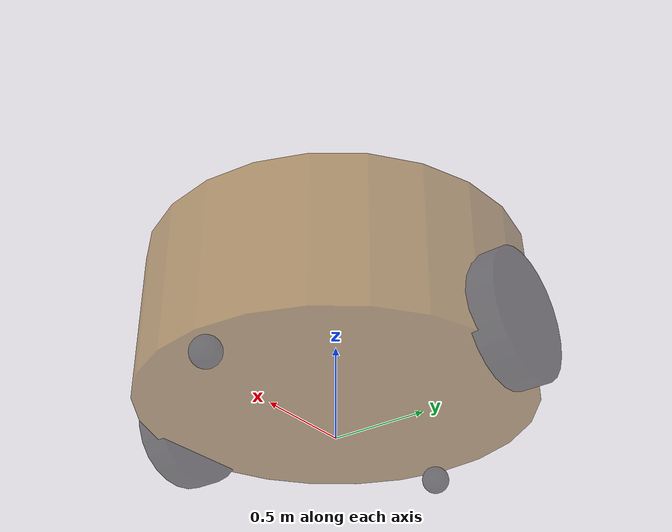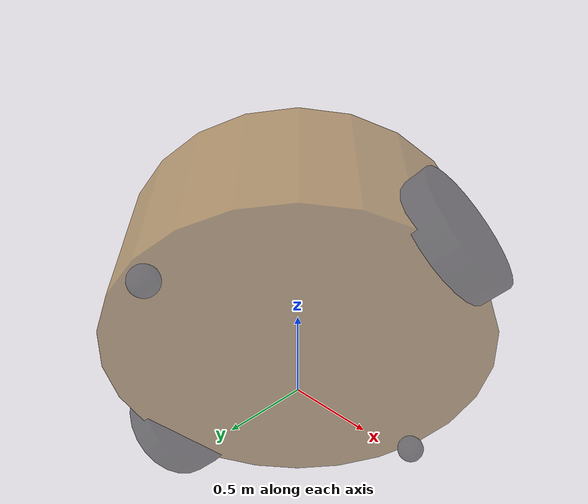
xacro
<robot name="my_base" xmlns:xacro="http://www.ros.org/wiki/xacro">

    <xacro:property name="footprint_radius" value="0.001" />
    <!-- 底盘属性 -->
    <xacro:property name="base_link_radius" value="1" /> <!-- base_link 半径 -->
    <xacro:property name="base_link_length" value="0.8" /> <!-- base_link 长 -->
    <xacro:property name="lidi" value="0.15" /> <!-- 离地间距 -->

    <!-- 1.base_footprint -->
    <link name="base_footprint">

        <visual>
        <geometry>
            <sphere radius="${footprint_radius}" />
        </geometry>
        </visual>
    </link>

    <!-- 2.base_link -->
    <link name="base_link">
        <visual>
        <geometry>
            <cylinder radius="${base_link_radius}" length="${base_link_length}" />
        </geometry>
        <origin xyz="0 0 0" rpy="0 0 0" />
        <material name="yellow">
            <color rgba="0.5 0.3 0.0 0.5" />
        </material>
        </visual>
    </link>

    <joint name="base_link2base_footprint" type="fixed">
        <parent link="base_footprint" />
        <child link="base_link" />
        <origin xyz="0 0 ${lidi + base_link_length / 2 }" />
    </joint>

    <!-- 3.添加驱动轮 -->
    <!--
        形状：圆柱
        半径：0.035m
        长度：0.015m

     -->

    <!-- 属性 -->
    <xacro:property name="wheel_radius" value="0.325" />
    <xacro:property name="wheel_length" value="0.15" />
    <xacro:property name="PI" value="3.1415926" />
    <!-- 注意：结果是负数 -->
    <xacro:property name="wheel_joint_z" value="${-1*(base_link_length/2+lidi - wheel_radius)}" />
    <!--
        wheel_name: left or right
        flag: 1 or -1

     -->

    <!-- 宏的定义 不调用不生效 -->
    <xacro:macro name="wheel_func" params="wheel_name flag">
        <!-- 3.1.link -->
        <link name="${wheel_name}_wheel">
            <visual>
            <geometry>
                <cylinder radius="${wheel_radius}" length="${wheel_length}" />
            </geometry>
            <origin xyz="0.0 0.0 0.0" rpy="${PI / 2} 0.0 0.0" />
            <material name="black">
                <color rgba="0 0 0 0.5" />
            </material>
            </visual>
        </link>

            <!-- 3.2.joint -->
        <joint name="${wheel_name}2link" type="continuous">
            <parent link="base_link" />
            <child link="${wheel_name}_wheel" />
            <!--
                x 无偏移
                y 车体半径
                z z=-(车体高度/2 + 离地间距 - 车轮半径)

            -->
            <origin xyz="0 ${flag * base_link_radius} ${wheel_joint_z }" />
            <axis xyz="0 1 0" />
        </joint>

    </xacro:macro>

    <!-- 宏的调用 -->
    <xacro:wheel_func wheel_name="left" flag="1" />
    <xacro:wheel_func wheel_name="right" flag="-1" />

    <!-- 4.添加支撑轮 -->
    <!--
        形状:球
        半径：0.0075m
     -->
    <!-- 支撑轮属性 -->
    <xacro:property name="support_wheel_radius" value="0.075" /> <!-- 支撑轮半径 -->
    <!-- z的偏移量 = 车体高度/2 + 离地间距 - 支持轮半径 -->
    <xacro:property name="support_joint_z" value="${-(base_link_length/2+lidi-support_wheel_radius)}" />

    <!-- 支撑轮宏 -->
    <xacro:macro name="add_support_wheel" params="support_name flag" >
        <link name="${support_name}_wheel">
            <visual>
                <geometry>
                    <sphere radius="${support_wheel_radius}" />
                </geometry>
                <origin xyz="0 0 0" rpy="0 0 0" />
                <material name="black">
                    <color rgba="0 0 0 0.5" />
                </material>
            </visual>
        </link>

        <joint name="${support_name}_wheel2link" type="continuous">
            <parent link="base_link" />
            <child link="${support_name}_wheel" />
            <origin xyz="${flag * (base_link_radius - support_wheel_radius)} 0 ${support_joint_z}" />
            <axis xyz="1 1 1" />
        </joint>
    </xacro:macro>

    <xacro:add_support_wheel support_name="front" flag="1" />
    <xacro:add_support_wheel support_name="back" flag="-1" />

</robot>
